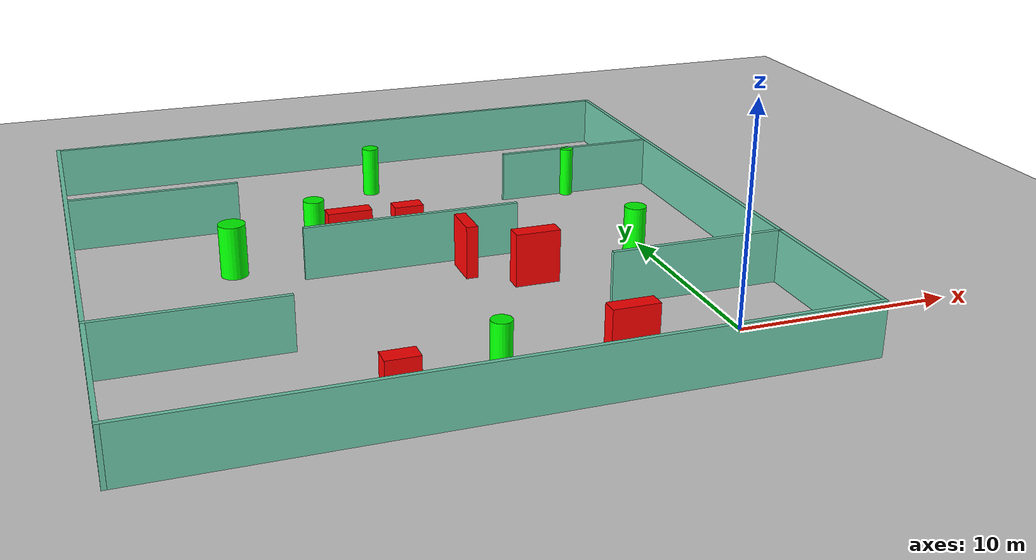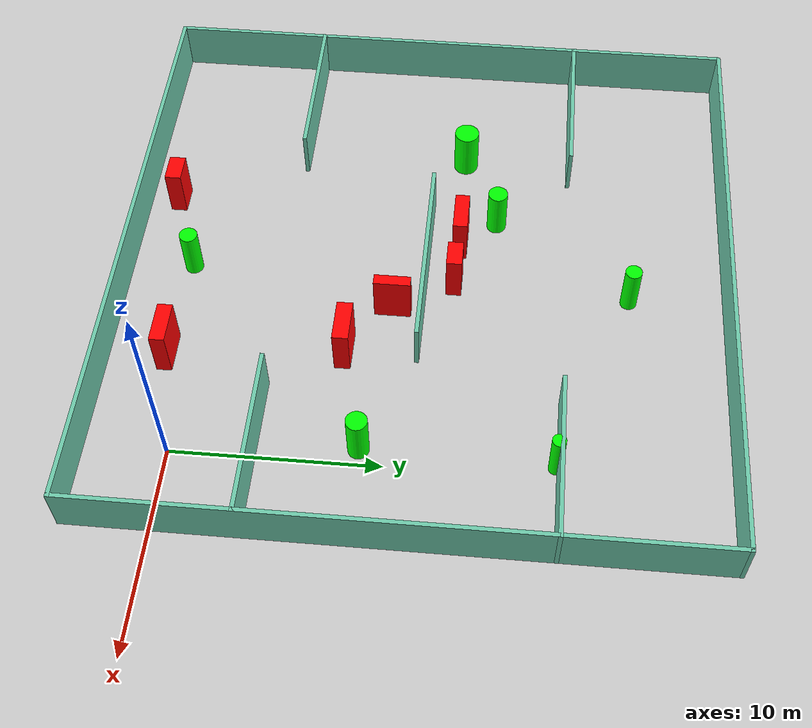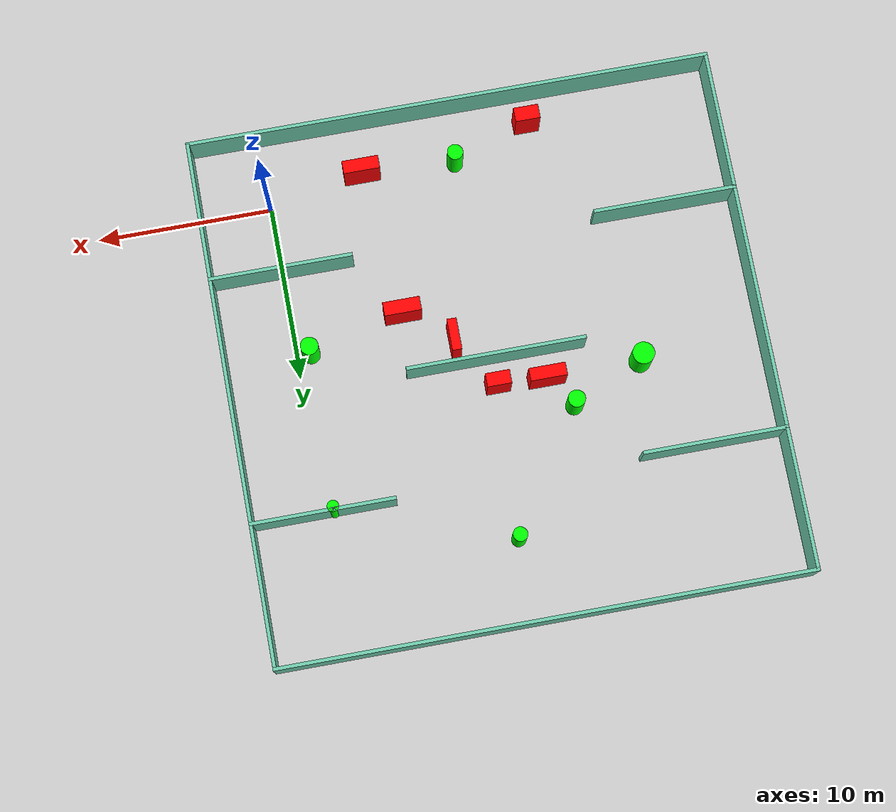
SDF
<sdf version="1.7">
 <world name="default">
  <light name="sun" type="directional">
   <pose>0 0 10 0 -0 0</pose>
   <diffuse>0.8 0.8 0.8 1</diffuse>
   <specular>0.2 0.2 0.2 1</specular>
   <attenuation>
    <range>1000</range>
    <constant>0.9</constant>
    <linear>0.01</linear>
    <quadratic>0.001</quadratic>
   </attenuation>
   <direction>-0.5 0.1 -0.9</direction>
   <spot><inner_angle>0</inner_angle><outer_angle>0</outer_angle><falloff>0</falloff></spot>
  </light>
  <model name="ground_plane">
   <static>1</static>
   <link name="link">
    <collision name="collision">
     <geometry><plane><normal>0 0 1</normal><size>100 100</size></plane></geometry>
     <surface>
      <contact><collide_bitmask>65535</collide_bitmask></contact>
      <friction><ode><mu>100</mu><mu2>50</mu2></ode></friction>
     </surface>
    </collision>
    <visual name="visual">
     <cast_shadows>0</cast_shadows>
     <geometry><plane><normal>0 0 1</normal><size>100 100</size></plane></geometry>
     <material>
      <script><uri>file://media/materials/scripts/gazebo.material</uri><name>Gazebo/Grey</name></script>
     </material>
    </visual>
   </link>
  </model>
  <gravity>0 0 -9.8</gravity>
  <magnetic_field>6e-06 2.3e-05 -4.2e-05</magnetic_field>
  <atmosphere type="adiabatic"/>
  <physics type="ode">
   <max_step_size>0.001</max_step_size>
   <real_time_factor>1</real_time_factor>
   <real_time_update_rate>1000</real_time_update_rate>
  </physics>
  <scene><ambient>0.4 0.4 0.4 1</ambient><background>0.7 0.7 0.7 1</background><shadows>1</shadows></scene>
  <spherical_coordinates>
   <surface_model>EARTH_WGS84</surface_model>
   <latitude_deg>0</latitude_deg>
   <longitude_deg>0</longitude_deg>
   <elevation>0</elevation>
   <heading_deg>0</heading_deg>
  </spherical_coordinates>
  <model name="my_base_walls">
   <link name="Wall_10">
    <collision name="Wall_10_Collision">
     <geometry><box><size>8.2 0.2 2.5</size></box></geometry>
     <pose>0 0 1.25 0 -0 0</pose>
    </collision>
    <visual name="Wall_10_Visual">
     <pose>0 0 1.25 0 -0 0</pose>
     <geometry><box><size>8.2 0.2 2.5</size></box></geometry>
     <material>
      <script><uri>file://media/materials/scripts/gazebo.material</uri><name>Gazebo/Grey</name></script>
      <ambient>0.435294 0.796078 0.67451 1</ambient>
     </material>
     <meta><layer>0</layer></meta>
    </visual>
    <pose>-11 -7 0 0 -0 0</pose>
   </link>
   <link name="Wall_12">
    <collision name="Wall_12_Collision">
     <geometry><box><size>8.2 0.2 2.5</size></box></geometry>
     <pose>0 0 1.25 0 -0 0</pose>
    </collision>
    <visual name="Wall_12_Visual">
     <pose>0 0 1.25 0 -0 0</pose>
     <geometry><box><size>8.2 0.2 2.5</size></box></geometry>
     <material>
      <script><uri>file://media/materials/scripts/gazebo.material</uri><name>Gazebo/Grey</name></script>
      <ambient>0.435294 0.796078 0.67451 1</ambient>
     </material>
     <meta><layer>0</layer></meta>
    </visual>
    <pose>-11 7 0 0 -0 0</pose>
   </link>
   <link name="Wall_14">
    <collision name="Wall_14_Collision">
     <geometry><box><size>8.2 0.2 2.5</size></box></geometry>
     <pose>0 0 1.25 0 -0 0</pose>
    </collision>
    <visual name="Wall_14_Visual">
     <pose>0 0 1.25 0 -0 0</pose>
     <geometry><box><size>8.2 0.2 2.5</size></box></geometry>
     <material>
      <script><uri>file://media/materials/scripts/gazebo.material</uri><name>Gazebo/Grey</name></script>
      <ambient>0.435294 0.796078 0.67451 1</ambient>
     </material>
     <meta><layer>0</layer></meta>
    </visual>
    <pose>11 7 0 0 -0 3.14159</pose>
   </link>
   <link name="Wall_16">
    <collision name="Wall_16_Collision">
     <geometry><box><size>10.2 0.2 2.5</size></box></geometry>
     <pose>0 0 1.25 0 -0 0</pose>
    </collision>
    <visual name="Wall_16_Visual">
     <pose>0 0 1.25 0 -0 0</pose>
     <geometry><box><size>10.2 0.2 2.5</size></box></geometry>
     <material>
      <script><uri>file://media/materials/scripts/gazebo.material</uri><name>Gazebo/Grey</name></script>
      <ambient>0.435294 0.796078 0.67451 1</ambient>
     </material>
     <meta><layer>0</layer></meta>
    </visual>
    <pose>0 0 0 0 -0 3.14159</pose>
   </link>
   <link name="Wall_2">
    <collision name="Wall_2_Collision">
     <geometry><box><size>30.2 0.2 2.5</size></box></geometry>
     <pose>0 0 1.25 0 -0 0</pose>
    </collision>
    <visual name="Wall_2_Visual">
     <pose>0 0 1.25 0 -0 0</pose>
     <geometry><box><size>30.2 0.2 2.5</size></box></geometry>
     <material>
      <script><uri>file://media/materials/scripts/gazebo.material</uri><name>Gazebo/Grey</name></script>
      <ambient>0.435294 0.796078 0.67451 1</ambient>
     </material>
     <meta><layer>0</layer></meta>
    </visual>
    <pose>0 -15 0 0 -0 3.14159</pose>
   </link>
   <link name="Wall_3">
    <collision name="Wall_3_Collision">
     <geometry><box><size>30.2 0.2 2.5</size></box></geometry>
     <pose>0 0 1.25 0 -0 0</pose>
    </collision>
    <visual name="Wall_3_Visual">
     <pose>0 0 1.25 0 -0 0</pose>
     <geometry><box><size>30.2 0.2 2.5</size></box></geometry>
     <material>
      <script><uri>file://media/materials/scripts/gazebo.material</uri><name>Gazebo/Grey</name></script>
      <ambient>0.435294 0.796078 0.67451 1</ambient>
     </material>
     <meta><layer>0</layer></meta>
    </visual>
    <pose>-15 0 0 0 -0 1.5708</pose>
   </link>
   <link name="Wall_4">
    <collision name="Wall_4_Collision">
     <geometry><box><size>30.2 0.2 2.5</size></box></geometry>
     <pose>0 0 1.25 0 -0 0</pose>
    </collision>
    <visual name="Wall_4_Visual">
     <pose>0 0 1.25 0 -0 0</pose>
     <geometry><box><size>30.2 0.2 2.5</size></box></geometry>
     <material>
      <script><uri>file://media/materials/scripts/gazebo.material</uri><name>Gazebo/Grey</name></script>
      <ambient>0.435294 0.796078 0.67451 1</ambient>
     </material>
     <meta><layer>0</layer></meta>
    </visual>
    <pose>0 15 0 0 -0 0</pose>
   </link>
   <link name="Wall_6">
    <collision name="Wall_6_Collision">
     <geometry><box><size>30.2 0.2 2.5</size></box></geometry>
     <pose>0 0 1.25 0 -0 0</pose>
    </collision>
    <visual name="Wall_6_Visual">
     <pose>0 0 1.25 0 -0 0</pose>
     <geometry><box><size>30.2 0.2 2.5</size></box></geometry>
     <material>
      <script><uri>file://media/materials/scripts/gazebo.material</uri><name>Gazebo/Grey</name></script>
      <ambient>0.435294 0.796078 0.67451 1</ambient>
     </material>
     <meta><layer>0</layer></meta>
    </visual>
    <pose>15 0 0 0 -0 1.5708</pose>
   </link>
   <link name="Wall_8">
    <collision name="Wall_8_Collision">
     <geometry><box><size>8.2 0.2 2.5</size></box></geometry>
     <pose>0 0 1.25 0 -0 0</pose>
    </collision>
    <visual name="Wall_8_Visual">
     <pose>0 0 1.25 0 -0 0</pose>
     <geometry><box><size>8.2 0.2 2.5</size></box></geometry>
     <material>
      <script><uri>file://media/materials/scripts/gazebo.material</uri><name>Gazebo/Grey</name></script>
      <ambient>0.435294 0.796078 0.67451 1</ambient>
     </material>
     <meta><layer>0</layer></meta>
    </visual>
    <pose>11 -7 0 0 -0 3.14159</pose>
   </link>
   <static>1</static>
   <pose>-11 11 0 0 -0 0</pose>
  </model>
  <model name="cylinder1">
   <static>1</static>
   <link name="link">
    <inertial>
     <mass>1</mass>
     <inertia><ixx>0.5</ixx><ixy>0</ixy><ixz>0</ixz><iyy>0.5</iyy><iyz>0</iyz><izz>1</izz></inertia>
    </inertial>
    <collision name="collision">
     <geometry><cylinder><radius>0.4909639090213716</radius><length>2.5</length></cylinder></geometry>
    </collision>
    <visual name="visual">
     <geometry><cylinder><radius>0.4909639090213716</radius><length>2.5</length></cylinder></geometry>
     <material>
      <ambient>0 1 0 1</ambient>
      <diffuse>0 1 0 1</diffuse>
      <specular>0.1 0.1 0.1 1</specular>
      <emissive>0 0 0 0</emissive>
     </material>
    </visual>
   </link>
   <pose>-14.899430922592103 14.360087709018863 1.25 0 0 0</pose>
  </model>
  <model name="cylinder2">
   <static>1</static>
   <link name="link">
    <inertial>
     <mass>1</mass>
     <inertia><ixx>0.5</ixx><ixy>0</ixy><ixz>0</ixz><iyy>0.5</iyy><iyz>0</iyz><izz>1</izz></inertia>
    </inertial>
    <collision name="collision">
     <geometry><cylinder><radius>0.6258405352048257</radius><length>2.5</length></cylinder></geometry>
    </collision>
    <visual name="visual">
     <geometry><cylinder><radius>0.6258405352048257</radius><length>2.5</length></cylinder></geometry>
     <material>
      <ambient>0 1 0 1</ambient>
      <diffuse>0 1 0 1</diffuse>
      <specular>0.1 0.1 0.1 1</specular>
      <emissive>0 0 0 0</emissive>
     </material>
    </visual>
   </link>
   <pose>-19.048144431249113 12.496210187403106 1.25 0 0 0</pose>
  </model>
  <model name="cylinder3">
   <static>1</static>
   <link name="link">
    <inertial>
     <mass>1</mass>
     <inertia><ixx>0.5</ixx><ixy>0</ixy><ixz>0</ixz><iyy>0.5</iyy><iyz>0</iyz><izz>1</izz></inertia>
    </inertial>
    <collision name="collision">
     <geometry><cylinder><radius>0.5106919152118445</radius><length>2.5</length></cylinder></geometry>
    </collision>
    <visual name="visual">
     <geometry><cylinder><radius>0.5106919152118445</radius><length>2.5</length></cylinder></geometry>
     <material>
      <ambient>0 1 0 1</ambient>
      <diffuse>0 1 0 1</diffuse>
      <specular>0.1 0.1 0.1 1</specular>
      <emissive>0 0 0 0</emissive>
     </material>
    </visual>
   </link>
   <pose>-0.8269682449063573 8.775597296789353 1.25 0 0 0</pose>
  </model>
  <model name="cylinder4">
   <static>1</static>
   <link name="link">
    <inertial>
     <mass>1</mass>
     <inertia><ixx>0.5</ixx><ixy>0</ixy><ixz>0</ixz><iyy>0.5</iyy><iyz>0</iyz><izz>1</izz></inertia>
    </inertial>
    <collision name="collision">
     <geometry><cylinder><radius>0.4520805881457609</radius><length>2.5</length></cylinder></geometry>
    </collision>
    <visual name="visual">
     <geometry><cylinder><radius>0.4520805881457609</radius><length>2.5</length></cylinder></geometry>
     <material>
      <ambient>0 1 0 1</ambient>
      <diffuse>0 1 0 1</diffuse>
      <specular>0.1 0.1 0.1 1</specular>
      <emissive>0 0 0 0</emissive>
     </material>
    </visual>
   </link>
   <pose>-10.856969282934891 -0.8220344790973506 1.25 0 0 0</pose>
  </model>
  <model name="cylinder5">
   <static>1</static>
   <link name="link">
    <inertial>
     <mass>1</mass>
     <inertia><ixx>0.5</ixx><ixy>0</ixy><ixz>0</ixz><iyy>0.5</iyy><iyz>0</iyz><izz>1</izz></inertia>
    </inertial>
    <collision name="collision">
     <geometry><cylinder><radius>0.4109899197396744</radius><length>2.5</length></cylinder></geometry>
    </collision>
    <visual name="visual">
     <geometry><cylinder><radius>0.4109899197396744</radius><length>2.5</length></cylinder></geometry>
     <material>
      <ambient>0 1 0 1</ambient>
      <diffuse>0 1 0 1</diffuse>
      <specular>0.1 0.1 0.1 1</specular>
      <emissive>0 0 0 0</emissive>
     </material>
    </visual>
   </link>
   <pose>-10.407266744017308 21.200157449929435 1.25 0 0 0</pose>
  </model>
  <model name="cylinder6">
   <static>1</static>
   <link name="link">
    <inertial>
     <mass>1</mass>
     <inertia><ixx>0.5</ixx><ixy>0</ixy><ixz>0</ixz><iyy>0.5</iyy><iyz>0</iyz><izz>1</izz></inertia>
    </inertial>
    <collision name="collision">
     <geometry><cylinder><radius>0.3285166145314419</radius><length>2.5</length></cylinder></geometry>
    </collision>
    <visual name="visual">
     <geometry><cylinder><radius>0.3285166145314419</radius><length>2.5</length></cylinder></geometry>
     <material>
      <ambient>0 1 0 1</ambient>
      <diffuse>0 1 0 1</diffuse>
      <specular>0.1 0.1 0.1 1</specular>
      <emissive>0 0 0 0</emissive>
     </material>
    </visual>
   </link>
   <pose>-0.5994277370842447 17.83544098492741 1.25 0 0 0</pose>
  </model>
  <model name="box1">
   <static>1</static>
   <link name="link">
    <inertial>
     <mass>1</mass>
     <inertia><ixx>0.083</ixx><ixy>0</ixy><ixz>0</ixz><iyy>0.083</iyy><iyz>0</iyz><izz>0.083</izz></inertia>
    </inertial>
    <collision name="collision">
     <geometry><box><size>2.098204508232749 0.7801252921294433 2.5</size></box></geometry>
    </collision>
    <visual name="visual">
     <geometry><box><size>2.098204508232749 0.7801252921294433 2.5</size></box></geometry>
     <material>
      <ambient>1 0 0 1</ambient>
      <diffuse>1 0 0 1</diffuse>
      <specular>0.1 0.1 0.1 1</specular>
      <emissive>0 0 0 0</emissive>
     </material>
    </visual>
    <sensor name="my_contact" type="contact">
     <contact><collision>box_collision</collision><topic>__default_topic__</topic></contact>
    </sensor>
   </link>
   <pose>-6.308142796056821 7.45767721018219 1.25 0 0 0</pose>
  </model>
  <model name="box2">
   <static>1</static>
   <link name="link">
    <inertial>
     <mass>1</mass>
     <inertia><ixx>0.083</ixx><ixy>0</ixy><ixz>0</ixz><iyy>0.083</iyy><iyz>0</iyz><izz>0.083</izz></inertia>
    </inertial>
    <collision name="collision">
     <geometry><box><size>2.0745654444513297 0.7404396890793121 2.5</size></box></geometry>
    </collision>
    <visual name="visual">
     <geometry><box><size>2.0745654444513297 0.7404396890793121 2.5</size></box></geometry>
     <material>
      <ambient>1 0 0 1</ambient>
      <diffuse>1 0 0 1</diffuse>
      <specular>0.1 0.1 0.1 1</specular>
      <emissive>0 0 0 0</emissive>
     </material>
    </visual>
    <sensor name="my_contact" type="contact">
     <contact><collision>box_collision</collision><topic>__default_topic__</topic></contact>
    </sensor>
   </link>
   <pose>-5.465930817360851 -1.0626499332862496 1.25 0 0 0</pose>
  </model>
  <model name="box3">
   <static>1</static>
   <link name="link">
    <inertial>
     <mass>1</mass>
     <inertia><ixx>0.083</ixx><ixy>0</ixy><ixz>0</ixz><iyy>0.083</iyy><iyz>0</iyz><izz>0.083</izz></inertia>
    </inertial>
    <collision name="collision">
     <geometry><box><size>1.4261520397601477 0.8120365699839437 2.5</size></box></geometry>
    </collision>
    <visual name="visual">
     <geometry><box><size>1.4261520397601477 0.8120365699839437 2.5</size></box></geometry>
     <material>
      <ambient>1 0 0 1</ambient>
      <diffuse>1 0 0 1</diffuse>
      <specular>0.1 0.1 0.1 1</specular>
      <emissive>0 0 0 0</emissive>
     </material>
    </visual>
    <sensor name="my_contact" type="contact">
     <contact><collision>box_collision</collision><topic>__default_topic__</topic></contact>
    </sensor>
   </link>
   <pose>-15.286111957367979 -2.373969769951037 1.25 0 0 0</pose>
  </model>
  <model name="box4">
   <static>1</static>
   <link name="link">
    <inertial>
     <mass>1</mass>
     <inertia><ixx>0.083</ixx><ixy>0</ixy><ixz>0</ixz><iyy>0.083</iyy><iyz>0</iyz><izz>0.083</izz></inertia>
    </inertial>
    <collision name="collision">
     <geometry><box><size>0.5451623625054041 1.8058978902847533 2.5</size></box></geometry>
    </collision>
    <visual name="visual">
     <geometry><box><size>0.5451623625054041 1.8058978902847533 2.5</size></box></geometry>
     <material>
      <ambient>1 0 0 1</ambient>
      <diffuse>1 0 0 1</diffuse>
      <specular>0.1 0.1 0.1 1</specular>
      <emissive>0 0 0 0</emissive>
     </material>
    </visual>
    <sensor name="my_contact" type="contact">
     <contact><collision>box_collision</collision><topic>__default_topic__</topic></contact>
    </sensor>
   </link>
   <pose>-8.891148572256188 9.551459314974545 1.25 0 0 0</pose>
  </model>
  <model name="box5">
   <static>1</static>
   <link name="link">
    <inertial>
     <mass>1</mass>
     <inertia><ixx>0.083</ixx><ixy>0</ixy><ixz>0</ixz><iyy>0.083</iyy><iyz>0</iyz><izz>0.083</izz></inertia>
    </inertial>
    <collision name="collision">
     <geometry><box><size>1.3792654870112067 0.7699862194689403 2.5</size></box></geometry>
    </collision>
    <visual name="visual">
     <geometry><box><size>1.3792654870112067 0.7699862194689403 2.5</size></box></geometry>
     <material>
      <ambient>1 0 0 1</ambient>
      <diffuse>1 0 0 1</diffuse>
      <specular>0.1 0.1 0.1 1</specular>
      <emissive>0 0 0 0</emissive>
     </material>
    </visual>
    <sensor name="my_contact" type="contact">
     <contact><collision>box_collision</collision><topic>__default_topic__</topic></contact>
    </sensor>
   </link>
   <pose>-10.846188997205127 12.456188251376208 1.25 0 0 0</pose>
  </model>
  <model name="box6">
   <static>1</static>
   <link name="link">
    <inertial>
     <mass>1</mass>
     <inertia><ixx>0.083</ixx><ixy>0</ixy><ixz>0</ixz><iyy>0.083</iyy><iyz>0</iyz><izz>0.083</izz></inertia>
    </inertial>
    <collision name="collision">
     <geometry><box><size>2.080052861253973 0.7264663783901206 2.5</size></box></geometry>
    </collision>
    <visual name="visual">
     <geometry><box><size>2.080052861253973 0.7264663783901206 2.5</size></box></geometry>
     <material>
      <ambient>1 0 0 1</ambient>
      <diffuse>1 0 0 1</diffuse>
      <specular>0.1 0.1 0.1 1</specular>
      <emissive>0 0 0 0</emissive>
     </material>
    </visual>
    <sensor name="my_contact" type="contact">
     <contact><collision>box_collision</collision><topic>__default_topic__</topic></contact>
    </sensor>
   </link>
   <pose>-13.61979136642418 12.581878469969533 1.25 0 0 0</pose>
  </model>
 </world>
</sdf>
